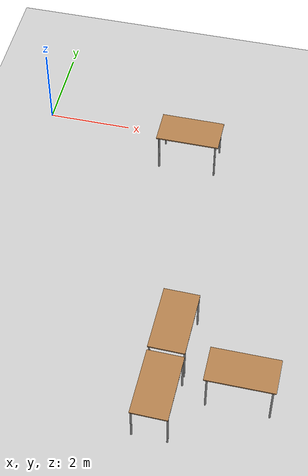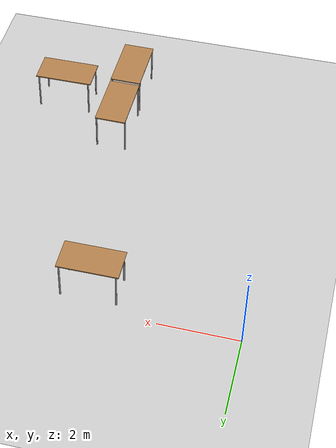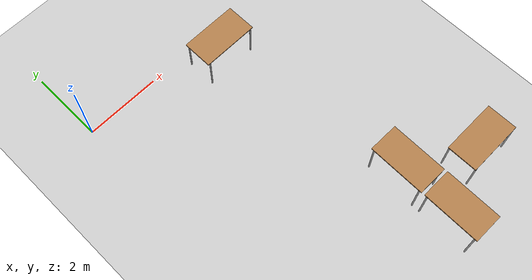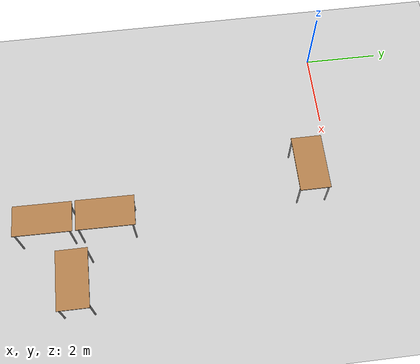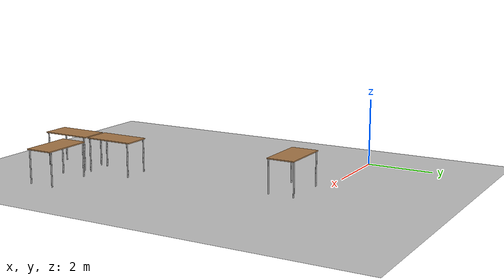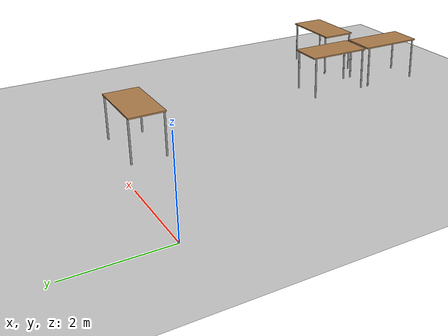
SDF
<sdf version="1.7">
 <world name="default">
  <model name="ground_plane">
   <static>1</static>
   <link name="link">
    <collision name="collision">
     <geometry><plane><normal>0 0 1</normal><size>100 100</size></plane></geometry>
     <surface><friction><ode><mu>100</mu><mu2>50</mu2></ode></friction></surface>
    </collision>
    <visual name="visual">
     <cast_shadows>0</cast_shadows>
     <geometry><plane><normal>0 0 1</normal><size>100 100</size></plane></geometry>
     <material>
      <script><uri>file://media/materials/scripts/gazebo.material</uri><name>Gazebo/Grey</name></script>
     </material>
    </visual>
   </link>
  </model>
  <model name="table">
   <static>1</static>
   <link name="link">
    <collision name="surface">
     <pose>0 0 1 0 -0 0</pose>
     <geometry><box><size>1.5 0.8 0.03</size></box></geometry>
     <surface><friction><ode><mu>0.6</mu><mu2>0.6</mu2></ode></friction></surface>
    </collision>
    <visual name="visual1">
     <pose>0 0 1 0 -0 0</pose>
     <geometry><box><size>1.5 0.8 0.03</size></box></geometry>
     <material>
      <script><uri>file://media/materials/scripts/gazebo.material</uri><name>Gazebo/Wood</name></script>
     </material>
    </visual>
    <collision name="front_left_leg">
     <pose>0.68 0.38 0.5 0 -0 0</pose>
     <geometry><cylinder><radius>0.02</radius><length>1</length></cylinder></geometry>
    </collision>
    <visual name="front_left_leg">
     <pose>0.68 0.38 0.5 0 -0 0</pose>
     <geometry><cylinder><radius>0.02</radius><length>1</length></cylinder></geometry>
     <material>
      <script><uri>file://media/materials/scripts/gazebo.material</uri><name>Gazebo/Grey</name></script>
     </material>
    </visual>
    <collision name="front_right_leg">
     <pose>0.68 -0.38 0.5 0 -0 0</pose>
     <geometry><cylinder><radius>0.02</radius><length>1</length></cylinder></geometry>
    </collision>
    <visual name="front_right_leg">
     <pose>0.68 -0.38 0.5 0 -0 0</pose>
     <geometry><cylinder><radius>0.02</radius><length>1</length></cylinder></geometry>
     <material>
      <script><uri>file://media/materials/scripts/gazebo.material</uri><name>Gazebo/Grey</name></script>
     </material>
    </visual>
    <collision name="back_right_leg">
     <pose>-0.68 -0.38 0.5 0 -0 0</pose>
     <geometry><cylinder><radius>0.02</radius><length>1</length></cylinder></geometry>
    </collision>
    <visual name="back_right_leg">
     <pose>-0.68 -0.38 0.5 0 -0 0</pose>
     <geometry><cylinder><radius>0.02</radius><length>1</length></cylinder></geometry>
     <material>
      <script><uri>file://media/materials/scripts/gazebo.material</uri><name>Gazebo/Grey</name></script>
     </material>
    </visual>
    <collision name="back_left_leg">
     <pose>-0.68 0.38 0.5 0 -0 0</pose>
     <geometry><cylinder><radius>0.02</radius><length>1</length></cylinder></geometry>
    </collision>
    <visual name="back_left_leg">
     <pose>-0.68 0.38 0.5 0 -0 0</pose>
     <geometry><cylinder><radius>0.02</radius><length>1</length></cylinder></geometry>
     <material>
      <script><uri>file://media/materials/scripts/gazebo.material</uri><name>Gazebo/Grey</name></script>
     </material>
    </visual>
   </link>
   <pose>4.47297 -6.09714 0 0 0 -1.58514</pose>
  </model>
  <model name="table_clone">
   <static>1</static>
   <link name="link">
    <collision name="surface">
     <pose>0 0 1 0 -0 0</pose>
     <geometry><box><size>1.5 0.8 0.03</size></box></geometry>
     <surface><friction><ode><mu>0.6</mu><mu2>0.6</mu2></ode></friction></surface>
    </collision>
    <visual name="visual1">
     <pose>0 0 1 0 -0 0</pose>
     <geometry><box><size>1.5 0.8 0.03</size></box></geometry>
     <material>
      <script><uri>file://media/materials/scripts/gazebo.material</uri><name>Gazebo/Wood</name></script>
     </material>
    </visual>
    <collision name="front_left_leg">
     <pose>0.68 0.38 0.5 0 -0 0</pose>
     <geometry><cylinder><radius>0.02</radius><length>1</length></cylinder></geometry>
    </collision>
    <visual name="front_left_leg">
     <pose>0.68 0.38 0.5 0 -0 0</pose>
     <geometry><cylinder><radius>0.02</radius><length>1</length></cylinder></geometry>
     <material>
      <script><uri>file://media/materials/scripts/gazebo.material</uri><name>Gazebo/Grey</name></script>
     </material>
    </visual>
    <collision name="front_right_leg">
     <pose>0.68 -0.38 0.5 0 -0 0</pose>
     <geometry><cylinder><radius>0.02</radius><length>1</length></cylinder></geometry>
    </collision>
    <visual name="front_right_leg">
     <pose>0.68 -0.38 0.5 0 -0 0</pose>
     <geometry><cylinder><radius>0.02</radius><length>1</length></cylinder></geometry>
     <material>
      <script><uri>file://media/materials/scripts/gazebo.material</uri><name>Gazebo/Grey</name></script>
     </material>
    </visual>
    <collision name="back_right_leg">
     <pose>-0.68 -0.38 0.5 0 -0 0</pose>
     <geometry><cylinder><radius>0.02</radius><length>1</length></cylinder></geometry>
    </collision>
    <visual name="back_right_leg">
     <pose>-0.68 -0.38 0.5 0 -0 0</pose>
     <geometry><cylinder><radius>0.02</radius><length>1</length></cylinder></geometry>
     <material>
      <script><uri>file://media/materials/scripts/gazebo.material</uri><name>Gazebo/Grey</name></script>
     </material>
    </visual>
    <collision name="back_left_leg">
     <pose>-0.68 0.38 0.5 0 -0 0</pose>
     <geometry><cylinder><radius>0.02</radius><length>1</length></cylinder></geometry>
    </collision>
    <visual name="back_left_leg">
     <pose>-0.68 0.38 0.5 0 -0 0</pose>
     <geometry><cylinder><radius>0.02</radius><length>1</length></cylinder></geometry>
     <material>
      <script><uri>file://media/materials/scripts/gazebo.material</uri><name>Gazebo/Grey</name></script>
     </material>
    </visual>
   </link>
   <pose>4.45943 -7.6752 0 0 0 -1.58514</pose>
  </model>
  <model name="table_0">
   <static>1</static>
   <link name="link">
    <collision name="surface">
     <pose>0 0 1 0 -0 0</pose>
     <geometry><box><size>1.5 0.8 0.03</size></box></geometry>
     <surface><friction><ode><mu>0.6</mu><mu2>0.6</mu2></ode></friction></surface>
    </collision>
    <visual name="visual1">
     <pose>0 0 1 0 -0 0</pose>
     <geometry><box><size>1.5 0.8 0.03</size></box></geometry>
     <material>
      <script><uri>file://media/materials/scripts/gazebo.material</uri><name>Gazebo/Wood</name></script>
     </material>
    </visual>
    <collision name="front_left_leg">
     <pose>0.68 0.38 0.5 0 -0 0</pose>
     <geometry><cylinder><radius>0.02</radius><length>1</length></cylinder></geometry>
    </collision>
    <visual name="front_left_leg">
     <pose>0.68 0.38 0.5 0 -0 0</pose>
     <geometry><cylinder><radius>0.02</radius><length>1</length></cylinder></geometry>
     <material>
      <script><uri>file://media/materials/scripts/gazebo.material</uri><name>Gazebo/Grey</name></script>
     </material>
    </visual>
    <collision name="front_right_leg">
     <pose>0.68 -0.38 0.5 0 -0 0</pose>
     <geometry><cylinder><radius>0.02</radius><length>1</length></cylinder></geometry>
    </collision>
    <visual name="front_right_leg">
     <pose>0.68 -0.38 0.5 0 -0 0</pose>
     <geometry><cylinder><radius>0.02</radius><length>1</length></cylinder></geometry>
     <material>
      <script><uri>file://media/materials/scripts/gazebo.material</uri><name>Gazebo/Grey</name></script>
     </material>
    </visual>
    <collision name="back_right_leg">
     <pose>-0.68 -0.38 0.5 0 -0 0</pose>
     <geometry><cylinder><radius>0.02</radius><length>1</length></cylinder></geometry>
    </collision>
    <visual name="back_right_leg">
     <pose>-0.68 -0.38 0.5 0 -0 0</pose>
     <geometry><cylinder><radius>0.02</radius><length>1</length></cylinder></geometry>
     <material>
      <script><uri>file://media/materials/scripts/gazebo.material</uri><name>Gazebo/Grey</name></script>
     </material>
    </visual>
    <collision name="back_left_leg">
     <pose>-0.68 0.38 0.5 0 -0 0</pose>
     <geometry><cylinder><radius>0.02</radius><length>1</length></cylinder></geometry>
    </collision>
    <visual name="back_left_leg">
     <pose>-0.68 0.38 0.5 0 -0 0</pose>
     <geometry><cylinder><radius>0.02</radius><length>1</length></cylinder></geometry>
     <material>
      <script><uri>file://media/materials/scripts/gazebo.material</uri><name>Gazebo/Grey</name></script>
     </material>
    </visual>
   </link>
   <pose>6.09053 -6.96809 0 0 -0 0</pose>
  </model>
  <model name="table_7">
   <static>1</static>
   <link name="link">
    <collision name="surface">
     <pose>0 0 1 0 -0 0</pose>
     <geometry><box><size>1.5 0.8 0.03</size></box></geometry>
     <surface><friction><ode><mu>0.6</mu><mu2>0.6</mu2></ode></friction></surface>
    </collision>
    <visual name="visual1">
     <pose>0 0 1 0 -0 0</pose>
     <geometry><box><size>1.5 0.8 0.03</size></box></geometry>
     <material>
      <script><uri>file://media/materials/scripts/gazebo.material</uri><name>Gazebo/Wood</name></script>
     </material>
    </visual>
    <collision name="front_left_leg">
     <pose>0.68 0.38 0.5 0 -0 0</pose>
     <geometry><cylinder><radius>0.02</radius><length>1</length></cylinder></geometry>
    </collision>
    <visual name="front_left_leg">
     <pose>0.68 0.38 0.5 0 -0 0</pose>
     <geometry><cylinder><radius>0.02</radius><length>1</length></cylinder></geometry>
     <material>
      <script><uri>file://media/materials/scripts/gazebo.material</uri><name>Gazebo/Grey</name></script>
     </material>
    </visual>
    <collision name="front_right_leg">
     <pose>0.68 -0.38 0.5 0 -0 0</pose>
     <geometry><cylinder><radius>0.02</radius><length>1</length></cylinder></geometry>
    </collision>
    <visual name="front_right_leg">
     <pose>0.68 -0.38 0.5 0 -0 0</pose>
     <geometry><cylinder><radius>0.02</radius><length>1</length></cylinder></geometry>
     <material>
      <script><uri>file://media/materials/scripts/gazebo.material</uri><name>Gazebo/Grey</name></script>
     </material>
    </visual>
    <collision name="back_right_leg">
     <pose>-0.68 -0.38 0.5 0 -0 0</pose>
     <geometry><cylinder><radius>0.02</radius><length>1</length></cylinder></geometry>
    </collision>
    <visual name="back_right_leg">
     <pose>-0.68 -0.38 0.5 0 -0 0</pose>
     <geometry><cylinder><radius>0.02</radius><length>1</length></cylinder></geometry>
     <material>
      <script><uri>file://media/materials/scripts/gazebo.material</uri><name>Gazebo/Grey</name></script>
     </material>
    </visual>
    <collision name="back_left_leg">
     <pose>-0.68 0.38 0.5 0 -0 0</pose>
     <geometry><cylinder><radius>0.02</radius><length>1</length></cylinder></geometry>
    </collision>
    <visual name="back_left_leg">
     <pose>-0.68 0.38 0.5 0 -0 0</pose>
     <geometry><cylinder><radius>0.02</radius><length>1</length></cylinder></geometry>
     <material>
      <script><uri>file://media/materials/scripts/gazebo.material</uri><name>Gazebo/Grey</name></script>
     </material>
    </visual>
   </link>
   <pose>3.71304 -0.706844 0 0 -0 0</pose>
  </model>
 </world>
</sdf>
